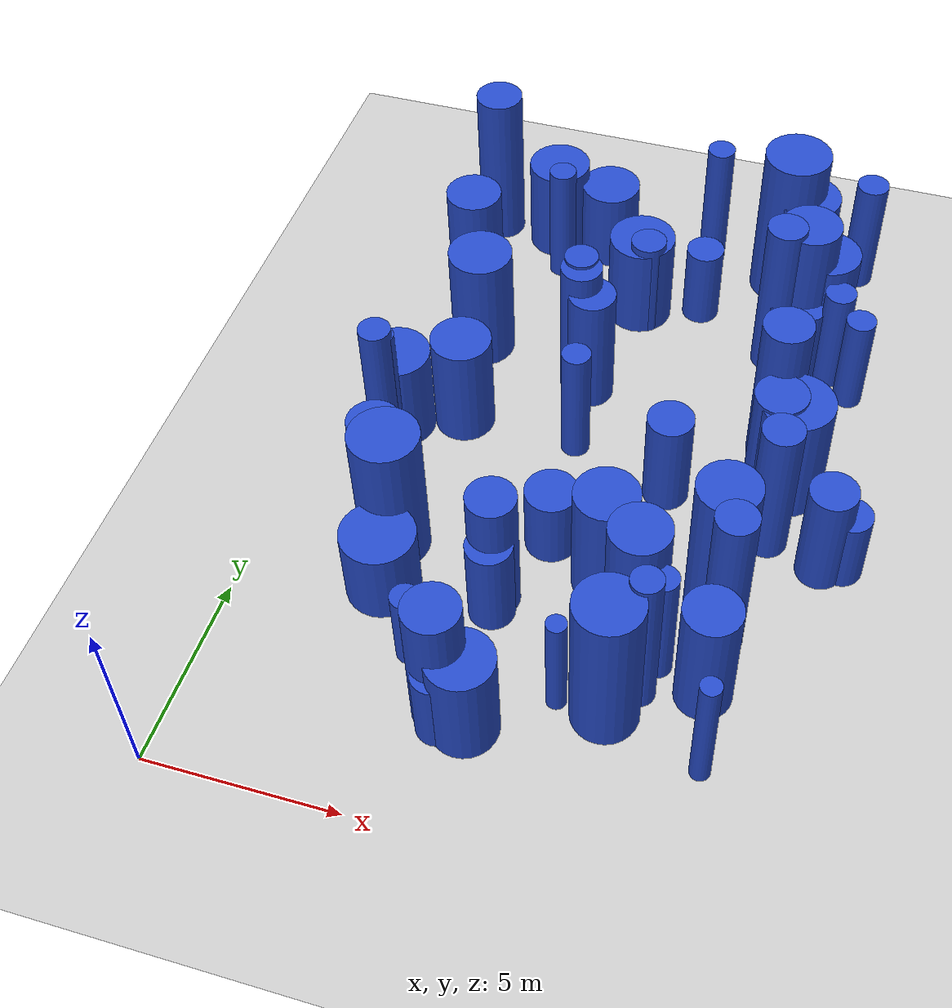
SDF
<sdf version="1.6">
 <world name="default">
  <model name="ground_plane">
   <static>1</static>
   <link name="link">
    <collision name="collision">
     <geometry><plane><normal>0 0 1</normal><size>100 100</size></plane></geometry>
     <surface><friction><ode><mu>100</mu><mu2>50</mu2></ode></friction></surface>
    </collision>
    <visual name="visual">
     <cast_shadows>0</cast_shadows>
     <geometry><plane><normal>0 0 1</normal><size>100 100</size></plane></geometry>
     <material>
      <script><uri>file://media/materials/scripts/gazebo.material</uri><name>Gazebo/Grey</name></script>
     </material>
    </visual>
   </link>
  </model>
  <model name="11">
   <static>0</static>
   <link name="link">
    <inertial>
     <mass>2</mass>
     <inertia><ixx>3.77059</ixx><ixy>0</ixy><ixz>0</ixz><iyy>3.77059</iyy><iyz>0</iyz><izz>0.647013</izz></inertia>
    </inertial>
    <collision name="collision">
     <geometry><cylinder><length>4.5478</length><radius>0.804371</radius></cylinder></geometry>
     <surface><contact><collide_without_contact>1</collide_without_contact></contact></surface>
    </collision>
    <visual name="visual">
     <geometry><cylinder><length>4.5478</length><radius>0.804371</radius></cylinder></geometry>
     <material>
      <script><uri>file://media/materials/scripts/gazebo.material</uri><name>Gazebo/Blue</name></script>
     </material>
    </visual>
    <gravity>0</gravity>
   </link>
   <pose>11.7835 8.00404 2.2739 0 -0 0</pose>
  </model>
  <model name="19">
   <static>0</static>
   <link name="link">
    <inertial>
     <mass>2</mass>
     <inertia>
      <ixx>0.997922</ixx>
      <ixy>0</ixy>
      <ixz>0</ixz>
      <iyy>0.997922</iyy>
      <iyz>0</iyz>
      <izz>0.310025</izz>
     </inertia>
    </inertial>
    <collision name="collision">
     <geometry><cylinder><length>2.24888</length><radius>0.556799</radius></cylinder></geometry>
     <surface><contact><collide_without_contact>1</collide_without_contact></contact></surface>
    </collision>
    <visual name="visual">
     <geometry><cylinder><length>2.24888</length><radius>0.556799</radius></cylinder></geometry>
     <material>
      <script><uri>file://media/materials/scripts/gazebo.material</uri><name>Gazebo/Blue</name></script>
     </material>
    </visual>
    <gravity>0</gravity>
   </link>
   <pose>6.32254 2.75765 1.12444 0 -0 0</pose>
  </model>
  <model name="21">
   <static>0</static>
   <link name="link">
    <inertial>
     <mass>2</mass>
     <inertia>
      <ixx>1.75689</ixx>
      <ixy>0</ixy>
      <ixz>0</ixz>
      <iyy>1.75689</iyy>
      <iyz>0</iyz>
      <izz>0.0651823</izz>
     </inertia>
    </inertial>
    <collision name="collision">
     <geometry><cylinder><length>3.21648</length><radius>0.255308</radius></cylinder></geometry>
     <surface><contact><collide_without_contact>1</collide_without_contact></contact></surface>
    </collision>
    <visual name="visual">
     <geometry><cylinder><length>3.21648</length><radius>0.255308</radius></cylinder></geometry>
     <material>
      <script><uri>file://media/materials/scripts/gazebo.material</uri><name>Gazebo/Blue</name></script>
     </material>
    </visual>
    <gravity>0</gravity>
   </link>
   <pose>8.77724 4.1816 1.60824 0 -0 0</pose>
  </model>
  <model name="22">
   <static>0</static>
   <link name="link">
    <inertial>
     <mass>2</mass>
     <inertia><ixx>2.50621</ixx><ixy>0</ixy><ixz>0</ixz><iyy>2.50621</iyy><iyz>0</iyz><izz>0.412755</izz></inertia>
    </inertial>
    <collision name="collision">
     <geometry><cylinder><length>3.7147</length><radius>0.64246</radius></cylinder></geometry>
     <surface><contact><collide_without_contact>1</collide_without_contact></contact></surface>
    </collision>
    <visual name="visual">
     <geometry><cylinder><length>3.7147</length><radius>0.64246</radius></cylinder></geometry>
     <material>
      <script><uri>file://media/materials/scripts/gazebo.material</uri><name>Gazebo/Blue</name></script>
     </material>
    </visual>
    <gravity>0</gravity>
   </link>
   <pose>6.86482 14.0884 1.85735 0 -0 0</pose>
  </model>
  <model name="32">
   <static>0</static>
   <link name="link">
    <inertial>
     <mass>2</mass>
     <inertia><ixx>2.55489</ixx><ixy>0</ixy><ixz>0</ixz><iyy>2.55489</iyy><iyz>0</iyz><izz>0.788576</izz></inertia>
    </inertial>
    <collision name="collision">
     <geometry><cylinder><length>3.6005</length><radius>0.888018</radius></cylinder></geometry>
     <surface><contact><collide_without_contact>1</collide_without_contact></contact></surface>
    </collision>
    <visual name="visual">
     <geometry><cylinder><length>3.6005</length><radius>0.888018</radius></cylinder></geometry>
     <material>
      <script><uri>file://media/materials/scripts/gazebo.material</uri><name>Gazebo/Blue</name></script>
     </material>
    </visual>
    <gravity>0</gravity>
   </link>
   <pose>12.5968 17.555 1.80025 0 -0 0</pose>
  </model>
  <model name="40">
   <static>0</static>
   <link name="link">
    <inertial>
     <mass>2</mass>
     <inertia><ixx>1.69462</ixx><ixy>0</ixy><ixz>0</ixz><iyy>1.69462</iyy><iyz>0</iyz><izz>0.809361</izz></inertia>
    </inertial>
    <collision name="collision">
     <geometry><cylinder><length>2.78202</length><radius>0.899645</radius></cylinder></geometry>
     <surface><contact><collide_without_contact>1</collide_without_contact></contact></surface>
    </collision>
    <visual name="visual">
     <geometry><cylinder><length>2.78202</length><radius>0.899645</radius></cylinder></geometry>
     <material>
      <script><uri>file://media/materials/scripts/gazebo.material</uri><name>Gazebo/Blue</name></script>
     </material>
    </visual>
    <gravity>0</gravity>
   </link>
   <pose>2.25113 11.4808 1.39101 0 -0 0</pose>
  </model>
  <model name="45">
   <static>0</static>
   <link name="link">
    <inertial>
     <mass>2</mass>
     <inertia><ixx>3.37145</ixx><ixy>0</ixy><ixz>0</ixz><iyy>3.37145</iyy><iyz>0</iyz><izz>0.593405</izz></inertia>
    </inertial>
    <collision name="collision">
     <geometry><cylinder><length>4.29517</length><radius>0.770328</radius></cylinder></geometry>
     <surface><contact><collide_without_contact>1</collide_without_contact></contact></surface>
    </collision>
    <visual name="visual">
     <geometry><cylinder><length>4.29517</length><radius>0.770328</radius></cylinder></geometry>
     <material>
      <script><uri>file://media/materials/scripts/gazebo.material</uri><name>Gazebo/Blue</name></script>
     </material>
    </visual>
    <gravity>0</gravity>
   </link>
   <pose>10.0825 6.46261 2.14758 0 -0 0</pose>
  </model>
  <model name="47">
   <static>0</static>
   <link name="link">
    <inertial>
     <mass>2</mass>
     <inertia><ixx>4.30581</ixx><ixy>0</ixy><ixz>0</ixz><iyy>4.30581</iyy><iyz>0</iyz><izz>0.874701</izz></inertia>
    </inertial>
    <collision name="collision">
     <geometry><cylinder><length>4.81775</length><radius>0.935255</radius></cylinder></geometry>
     <surface><contact><collide_without_contact>1</collide_without_contact></contact></surface>
    </collision>
    <visual name="visual">
     <geometry><cylinder><length>4.81775</length><radius>0.935255</radius></cylinder></geometry>
     <material>
      <script><uri>file://media/materials/scripts/gazebo.material</uri><name>Gazebo/Blue</name></script>
     </material>
    </visual>
    <gravity>0</gravity>
   </link>
   <pose>11.1965 19.9775 2.40888 0 -0 0</pose>
  </model>
  <model name="52">
   <static>0</static>
   <link name="link">
    <inertial>
     <mass>2</mass>
     <inertia><ixx>2.41043</ixx><ixy>0</ixy><ixz>0</ixz><iyy>2.41043</iyy><iyz>0</iyz><izz>0.952559</izz></inertia>
    </inertial>
    <collision name="collision">
     <geometry><cylinder><length>3.40659</length><radius>0.975991</radius></cylinder></geometry>
     <surface><contact><collide_without_contact>1</collide_without_contact></contact></surface>
    </collision>
    <visual name="visual">
     <geometry><cylinder><length>3.40659</length><radius>0.975991</radius></cylinder></geometry>
     <material>
      <script><uri>file://media/materials/scripts/gazebo.material</uri><name>Gazebo/Blue</name></script>
     </material>
    </visual>
    <gravity>0</gravity>
   </link>
   <pose>12.7603 12.0977 1.7033 0 -0 0</pose>
  </model>
  <model name="58">
   <static>0</static>
   <link name="link">
    <inertial>
     <mass>2</mass>
     <inertia><ixx>2.373</ixx><ixy>0</ixy><ixz>0</ixz><iyy>2.373</iyy><iyz>0</iyz><izz>0.145123</izz></inertia>
    </inertial>
    <collision name="collision">
     <geometry><cylinder><length>3.71519</length><radius>0.38095</radius></cylinder></geometry>
     <surface><contact><collide_without_contact>1</collide_without_contact></contact></surface>
    </collision>
    <visual name="visual">
     <geometry><cylinder><length>3.71519</length><radius>0.38095</radius></cylinder></geometry>
     <material>
      <script><uri>file://media/materials/scripts/gazebo.material</uri><name>Gazebo/Blue</name></script>
     </material>
    </visual>
    <gravity>0</gravity>
   </link>
   <pose>4.71278 18.757 1.8576 0 -0 0</pose>
  </model>
  <model name="60">
   <static>0</static>
   <link name="link">
    <inertial>
     <mass>2</mass>
     <inertia><ixx>1.97195</ixx><ixy>0</ixy><ixz>0</ixz><iyy>1.97195</iyy><iyz>0</iyz><izz>0.666713</izz></inertia>
    </inertial>
    <collision name="collision">
     <geometry><cylinder><length>3.13553</length><radius>0.816525</radius></cylinder></geometry>
     <surface><contact><collide_without_contact>1</collide_without_contact></contact></surface>
    </collision>
    <visual name="visual">
     <geometry><cylinder><length>3.13553</length><radius>0.816525</radius></cylinder></geometry>
     <material>
      <script><uri>file://media/materials/scripts/gazebo.material</uri><name>Gazebo/Blue</name></script>
     </material>
    </visual>
    <gravity>0</gravity>
   </link>
   <pose>3.85237 12.0827 1.56776 0 -0 0</pose>
  </model>
  <model name="71">
   <static>0</static>
   <link name="link">
    <inertial>
     <mass>2</mass>
     <inertia><ixx>1.35655</ixx><ixy>0</ixy><ixz>0</ixz><iyy>1.35655</iyy><iyz>0</iyz><izz>0.3536</izz></inertia>
    </inertial>
    <collision name="collision">
     <geometry><cylinder><length>2.66054</length><radius>0.594643</radius></cylinder></geometry>
     <surface><contact><collide_without_contact>1</collide_without_contact></contact></surface>
    </collision>
    <visual name="visual">
     <geometry><cylinder><length>2.66054</length><radius>0.594643</radius></cylinder></geometry>
     <material>
      <script><uri>file://media/materials/scripts/gazebo.material</uri><name>Gazebo/Blue</name></script>
     </material>
    </visual>
    <gravity>0</gravity>
   </link>
   <pose>6.51923 6.20878 1.33027 0 -0 0</pose>
  </model>
  <model name="77">
   <static>0</static>
   <link name="link">
    <inertial>
     <mass>2</mass>
     <inertia><ixx>2.29026</ixx><ixy>0</ixy><ixz>0</ixz><iyy>2.29026</iyy><iyz>0</iyz><izz>0.492455</izz></inertia>
    </inertial>
    <collision name="collision">
     <geometry><cylinder><length>3.50202</length><radius>0.701751</radius></cylinder></geometry>
     <surface><contact><collide_without_contact>1</collide_without_contact></contact></surface>
    </collision>
    <visual name="visual">
     <geometry><cylinder><length>3.50202</length><radius>0.701751</radius></cylinder></geometry>
     <material>
      <script><uri>file://media/materials/scripts/gazebo.material</uri><name>Gazebo/Blue</name></script>
     </material>
    </visual>
    <gravity>0</gravity>
   </link>
   <pose>12.3354 12.1472 1.75101 0 -0 0</pose>
  </model>
  <model name="88">
   <static>0</static>
   <link name="link">
    <inertial>
     <mass>2</mass>
     <inertia><ixx>3.32332</ixx><ixy>0</ixy><ixz>0</ixz><iyy>3.32332</iyy><iyz>0</iyz><izz>0.81294</izz></inertia>
    </inertial>
    <collision name="collision">
     <geometry><cylinder><length>4.18343</length><radius>0.901632</radius></cylinder></geometry>
     <surface><contact><collide_without_contact>1</collide_without_contact></contact></surface>
    </collision>
    <visual name="visual">
     <geometry><cylinder><length>4.18343</length><radius>0.901632</radius></cylinder></geometry>
     <material>
      <script><uri>file://media/materials/scripts/gazebo.material</uri><name>Gazebo/Blue</name></script>
     </material>
    </visual>
    <gravity>0</gravity>
   </link>
   <pose>3.4913 7.55284 2.09172 0 -0 0</pose>
  </model>
  <model name="90">
   <static>0</static>
   <link name="link">
    <inertial>
     <mass>2</mass>
     <inertia><ixx>2.86278</ixx><ixy>0</ixy><ixz>0</ixz><iyy>2.86278</iyy><iyz>0</iyz><izz>0.397125</izz></inertia>
    </inertial>
    <collision name="collision">
     <geometry><cylinder><length>3.99816</length><radius>0.630179</radius></cylinder></geometry>
     <surface><contact><collide_without_contact>1</collide_without_contact></contact></surface>
    </collision>
    <visual name="visual">
     <geometry><cylinder><length>3.99816</length><radius>0.630179</radius></cylinder></geometry>
     <material>
      <script><uri>file://media/materials/scripts/gazebo.material</uri><name>Gazebo/Blue</name></script>
     </material>
    </visual>
    <gravity>0</gravity>
   </link>
   <pose>6.48747 6.60006 1.99908 0 -0 0</pose>
  </model>
  <model name="92">
   <static>0</static>
   <link name="link">
    <inertial>
     <mass>2</mass>
     <inertia><ixx>1.26504</ixx><ixy>0</ixy><ixz>0</ixz><iyy>1.26504</iyy><iyz>0</iyz><izz>0.921977</izz></inertia>
    </inertial>
    <collision name="collision">
     <geometry><cylinder><length>2.19643</length><radius>0.960197</radius></cylinder></geometry>
     <surface><contact><collide_without_contact>1</collide_without_contact></contact></surface>
    </collision>
    <visual name="visual">
     <geometry><cylinder><length>2.19643</length><radius>0.960197</radius></cylinder></geometry>
     <material>
      <script><uri>file://media/materials/scripts/gazebo.material</uri><name>Gazebo/Blue</name></script>
     </material>
    </visual>
    <gravity>0</gravity>
   </link>
   <pose>3.6952 6.14217 1.09822 0 -0 0</pose>
  </model>
  <model name="95">
   <static>0</static>
   <link name="link">
    <inertial>
     <mass>2</mass>
     <inertia><ixx>2.20856</ixx><ixy>0</ixy><ixz>0</ixz><iyy>2.20856</iyy><iyz>0</iyz><izz>0.202569</izz></inertia>
    </inertial>
    <collision name="collision">
     <geometry><cylinder><length>3.55579</length><radius>0.450077</radius></cylinder></geometry>
     <surface><contact><collide_without_contact>1</collide_without_contact></contact></surface>
    </collision>
    <visual name="visual">
     <geometry><cylinder><length>3.55579</length><radius>0.450077</radius></cylinder></geometry>
     <material>
      <script><uri>file://media/materials/scripts/gazebo.material</uri><name>Gazebo/Blue</name></script>
     </material>
    </visual>
    <gravity>0</gravity>
   </link>
   <pose>13.3348 20.8304 1.77789 0 -0 0</pose>
  </model>
  <model name="97">
   <static>0</static>
   <link name="link">
    <inertial>
     <mass>2</mass>
     <inertia><ixx>1.79072</ixx><ixy>0</ixy><ixz>0</ixz><iyy>1.79072</iyy><iyz>0</iyz><izz>0.492461</izz></inertia>
    </inertial>
    <collision name="collision">
     <geometry><cylinder><length>3.04417</length><radius>0.701755</radius></cylinder></geometry>
     <surface><contact><collide_without_contact>1</collide_without_contact></contact></surface>
    </collision>
    <visual name="visual">
     <geometry><cylinder><length>3.04417</length><radius>0.701755</radius></cylinder></geometry>
     <material>
      <script><uri>file://media/materials/scripts/gazebo.material</uri><name>Gazebo/Blue</name></script>
     </material>
    </visual>
    <gravity>0</gravity>
   </link>
   <pose>2.64905 8.82661 1.52208 0 -0 0</pose>
  </model>
  <model name="100">
   <static>0</static>
   <link name="link">
    <inertial>
     <mass>2</mass>
     <inertia><ixx>3.68584</ixx><ixy>0</ixy><ixz>0</ixz><iyy>3.68584</iyy><iyz>0</iyz><izz>0.715323</izz></inertia>
    </inertial>
    <collision name="collision">
     <geometry><cylinder><length>4.46868</length><radius>0.845768</radius></cylinder></geometry>
     <surface><contact><collide_without_contact>1</collide_without_contact></contact></surface>
    </collision>
    <visual name="visual">
     <geometry><cylinder><length>4.46868</length><radius>0.845768</radius></cylinder></geometry>
     <material>
      <script><uri>file://media/materials/scripts/gazebo.material</uri><name>Gazebo/Blue</name></script>
     </material>
    </visual>
    <gravity>0</gravity>
   </link>
   <pose>9.95991 4.16997 2.23434 0 -0 0</pose>
  </model>
  <model name="107">
   <static>0</static>
   <link name="link">
    <inertial>
     <mass>2</mass>
     <inertia><ixx>1.85939</ixx><ixy>0</ixy><ixz>0</ixz><iyy>1.85939</iyy><iyz>0</iyz><izz>0.178695</izz></inertia>
    </inertial>
    <collision name="collision">
     <geometry><cylinder><length>3.25887</length><radius>0.422723</radius></cylinder></geometry>
     <surface><contact><collide_without_contact>1</collide_without_contact></contact></surface>
    </collision>
    <visual name="visual">
     <geometry><cylinder><length>3.25887</length><radius>0.422723</radius></cylinder></geometry>
     <material>
      <script><uri>file://media/materials/scripts/gazebo.material</uri><name>Gazebo/Blue</name></script>
     </material>
    </visual>
    <gravity>0</gravity>
   </link>
   <pose>13.1558 16.4623 1.62944 0 -0 0</pose>
  </model>
  <model name="111">
   <static>0</static>
   <link name="link">
    <inertial>
     <mass>2</mass>
     <inertia>
      <ixx>0.780098</ixx>
      <ixy>0</ixy>
      <ixz>0</ixz>
      <iyy>0.780098</iyy>
      <iyz>0</iyz>
      <izz>0.171352</izz>
     </inertia>
    </inertial>
    <collision name="collision">
     <geometry><cylinder><length>2.04121</length><radius>0.413947</radius></cylinder></geometry>
     <surface><contact><collide_without_contact>1</collide_without_contact></contact></surface>
    </collision>
    <visual name="visual">
     <geometry><cylinder><length>2.04121</length><radius>0.413947</radius></cylinder></geometry>
     <material>
      <script><uri>file://media/materials/scripts/gazebo.material</uri><name>Gazebo/Blue</name></script>
     </material>
    </visual>
    <gravity>0</gravity>
   </link>
   <pose>5.84415 20.2492 1.0206 0 -0 0</pose>
  </model>
  <model name="118">
   <static>0</static>
   <link name="link">
    <inertial>
     <mass>2</mass>
     <inertia><ixx>1.11708</ixx><ixy>0</ixy><ixz>0</ixz><iyy>1.11708</iyy><iyz>0</iyz><izz>0.275413</izz></inertia>
    </inertial>
    <collision name="collision">
     <geometry><cylinder><length>2.42409</length><radius>0.524798</radius></cylinder></geometry>
     <surface><contact><collide_without_contact>1</collide_without_contact></contact></surface>
    </collision>
    <visual name="visual">
     <geometry><cylinder><length>2.42409</length><radius>0.524798</radius></cylinder></geometry>
     <material>
      <script><uri>file://media/materials/scripts/gazebo.material</uri><name>Gazebo/Blue</name></script>
     </material>
    </visual>
    <gravity>0</gravity>
   </link>
   <pose>9.1346 18.0868 1.21205 0 -0 0</pose>
  </model>
  <model name="121">
   <static>0</static>
   <link name="link">
    <inertial>
     <mass>2</mass>
     <inertia><ixx>2.77038</ixx><ixy>0</ixy><ixz>0</ixz><iyy>2.77038</iyy><iyz>0</iyz><izz>0.151986</izz></inertia>
    </inertial>
    <collision name="collision">
     <geometry><cylinder><length>4.02074</length><radius>0.389854</radius></cylinder></geometry>
     <surface><contact><collide_without_contact>1</collide_without_contact></contact></surface>
    </collision>
    <visual name="visual">
     <geometry><cylinder><length>4.02074</length><radius>0.389854</radius></cylinder></geometry>
     <material>
      <script><uri>file://media/materials/scripts/gazebo.material</uri><name>Gazebo/Blue</name></script>
     </material>
    </visual>
    <gravity>0</gravity>
   </link>
   <pose>8.93188 20.6188 2.01037 0 -0 0</pose>
  </model>
  <model name="134">
   <static>0</static>
   <link name="link">
    <inertial>
     <mass>2</mass>
     <inertia><ixx>1.3834</ixx><ixy>0</ixy><ixz>0</ixz><iyy>1.3834</iyy><iyz>0</iyz><izz>0.719026</izz></inertia>
    </inertial>
    <collision name="collision">
     <geometry><cylinder><length>2.47858</length><radius>0.847954</radius></cylinder></geometry>
     <surface><contact><collide_without_contact>1</collide_without_contact></contact></surface>
    </collision>
    <visual name="visual">
     <geometry><cylinder><length>2.47858</length><radius>0.847954</radius></cylinder></geometry>
     <material>
      <script><uri>file://media/materials/scripts/gazebo.material</uri><name>Gazebo/Blue</name></script>
     </material>
    </visual>
    <gravity>0</gravity>
   </link>
   <pose>5.83667 20.0283 1.23929 0 -0 0</pose>
  </model>
  <model name="143">
   <static>0</static>
   <link name="link">
    <inertial>
     <mass>2</mass>
     <inertia><ixx>3.31479</ixx><ixy>0</ixy><ixz>0</ixz><iyy>3.31479</iyy><iyz>0</iyz><izz>0.28799</izz></inertia>
    </inertial>
    <collision name="collision">
     <geometry><cylinder><length>4.36174</length><radius>0.536647</radius></cylinder></geometry>
     <surface><contact><collide_without_contact>1</collide_without_contact></contact></surface>
    </collision>
    <visual name="visual">
     <geometry><cylinder><length>4.36174</length><radius>0.536647</radius></cylinder></geometry>
     <material>
      <script><uri>file://media/materials/scripts/gazebo.material</uri><name>Gazebo/Blue</name></script>
     </material>
    </visual>
    <gravity>0</gravity>
   </link>
   <pose>12.638 10.2211 2.18087 0 -0 0</pose>
  </model>
  <model name="151">
   <static>0</static>
   <link name="link">
    <inertial>
     <mass>2</mass>
     <inertia>
      <ixx>0.940168</ixx>
      <ixy>0</ixy>
      <ixz>0</ixz>
      <iyy>0.940168</iyy>
      <iyz>0</iyz>
      <izz>0.483154</izz>
     </inertia>
    </inertial>
    <collision name="collision">
     <geometry><cylinder><length>2.04733</length><radius>0.695093</radius></cylinder></geometry>
     <surface><contact><collide_without_contact>1</collide_without_contact></contact></surface>
    </collision>
    <visual name="visual">
     <geometry><cylinder><length>2.04733</length><radius>0.695093</radius></cylinder></geometry>
     <material>
      <script><uri>file://media/materials/scripts/gazebo.material</uri><name>Gazebo/Blue</name></script>
     </material>
    </visual>
    <gravity>0</gravity>
   </link>
   <pose>7.32886 8.69612 1.02366 0 -0 0</pose>
  </model>
  <model name="154">
   <static>0</static>
   <link name="link">
    <inertial>
     <mass>2</mass>
     <inertia><ixx>4.18222</ixx><ixy>0</ixy><ixz>0</ixz><iyy>4.18222</iyy><iyz>0</iyz><izz>0.43784</izz></inertia>
    </inertial>
    <collision name="collision">
     <geometry><cylinder><length>4.87646</length><radius>0.661695</radius></cylinder></geometry>
     <surface><contact><collide_without_contact>1</collide_without_contact></contact></surface>
    </collision>
    <visual name="visual">
     <geometry><cylinder><length>4.87646</length><radius>0.661695</radius></cylinder></geometry>
     <material>
      <script><uri>file://media/materials/scripts/gazebo.material</uri><name>Gazebo/Blue</name></script>
     </material>
    </visual>
    <gravity>0</gravity>
   </link>
   <pose>2.38609 20.1587 2.43823 0 -0 0</pose>
  </model>
  <model name="161">
   <static>0</static>
   <link name="link">
    <inertial>
     <mass>2</mass>
     <inertia>
      <ixx>0.964244</ixx>
      <ixy>0</ixy>
      <ixz>0</ixz>
      <iyy>0.964244</iyy>
      <iyz>0</iyz>
      <izz>0.135231</izz>
     </inertia>
    </inertial>
    <collision name="collision">
     <geometry><cylinder><length>2.31943</length><radius>0.367737</radius></cylinder></geometry>
     <surface><contact><collide_without_contact>1</collide_without_contact></contact></surface>
    </collision>
    <visual name="visual">
     <geometry><cylinder><length>2.31943</length><radius>0.367737</radius></cylinder></geometry>
     <material>
      <script><uri>file://media/materials/scripts/gazebo.material</uri><name>Gazebo/Blue</name></script>
     </material>
    </visual>
    <gravity>0</gravity>
   </link>
   <pose>5.00364 4.50297 1.15972 0 -0 0</pose>
  </model>
  <model name="178">
   <static>0</static>
   <link name="link">
    <inertial>
     <mass>2</mass>
     <inertia><ixx>2.19598</ixx><ixy>0</ixy><ixz>0</ixz><iyy>2.19598</iyy><iyz>0</iyz><izz>0.145822</izz></inertia>
    </inertial>
    <collision name="collision">
     <geometry><cylinder><length>3.56909</length><radius>0.381867</radius></cylinder></geometry>
     <surface><contact><collide_without_contact>1</collide_without_contact></contact></surface>
    </collision>
    <visual name="visual">
     <geometry><cylinder><length>3.56909</length><radius>0.381867</radius></cylinder></geometry>
     <material>
      <script><uri>file://media/materials/scripts/gazebo.material</uri><name>Gazebo/Blue</name></script>
     </material>
    </visual>
    <gravity>0</gravity>
   </link>
   <pose>10.8212 5.80215 1.78454 0 -0 0</pose>
  </model>
  <model name="190">
   <static>0</static>
   <link name="link">
    <inertial>
     <mass>2</mass>
     <inertia><ixx>3.97541</ixx><ixy>0</ixy><ixz>0</ixz><iyy>3.97541</iyy><iyz>0</iyz><izz>0.441903</izz></inertia>
    </inertial>
    <collision name="collision">
     <geometry><cylinder><length>4.74624</length><radius>0.664758</radius></cylinder></geometry>
     <surface><contact><collide_without_contact>1</collide_without_contact></contact></surface>
    </collision>
    <visual name="visual">
     <geometry><cylinder><length>4.74624</length><radius>0.664758</radius></cylinder></geometry>
     <material>
      <script><uri>file://media/materials/scripts/gazebo.material</uri><name>Gazebo/Blue</name></script>
     </material>
    </visual>
    <gravity>0</gravity>
   </link>
   <pose>12.1448 13.34 2.37312 0 -0 0</pose>
  </model>
  <model name="196">
   <static>0</static>
   <link name="link">
    <inertial>
     <mass>2</mass>
     <inertia><ixx>2.2744</ixx><ixy>0</ixy><ixz>0</ixz><iyy>2.2744</iyy><iyz>0</iyz><izz>0.512084</izz></inertia>
    </inertial>
    <collision name="collision">
     <geometry><cylinder><length>3.47996</length><radius>0.7156</radius></cylinder></geometry>
     <surface><contact><collide_without_contact>1</collide_without_contact></contact></surface>
    </collision>
    <visual name="visual">
     <geometry><cylinder><length>3.47996</length><radius>0.7156</radius></cylinder></geometry>
     <material>
      <script><uri>file://media/materials/scripts/gazebo.material</uri><name>Gazebo/Blue</name></script>
     </material>
    </visual>
    <gravity>0</gravity>
   </link>
   <pose>12.0664 5.3226 1.73998 0 -0 0</pose>
  </model>
  <model name="209">
   <static>0</static>
   <link name="link">
    <inertial>
     <mass>2</mass>
     <inertia><ixx>1.70016</ixx><ixy>0</ixy><ixz>0</ixz><iyy>1.70016</iyy><iyz>0</iyz><izz>0.245876</izz></inertia>
    </inertial>
    <collision name="collision">
     <geometry><cylinder><length>3.07625</length><radius>0.495859</radius></cylinder></geometry>
     <surface><contact><collide_without_contact>1</collide_without_contact></contact></surface>
    </collision>
    <visual name="visual">
     <geometry><cylinder><length>3.07625</length><radius>0.495859</radius></cylinder></geometry>
     <material>
      <script><uri>file://media/materials/scripts/gazebo.material</uri><name>Gazebo/Blue</name></script>
     </material>
    </visual>
    <gravity>0</gravity>
   </link>
   <pose>7.65148 17.2583 1.53812 0 -0 0</pose>
  </model>
  <model name="217">
   <static>0</static>
   <link name="link">
    <inertial>
     <mass>2</mass>
     <inertia><ixx>4.24569</ixx><ixy>0</ixy><ixz>0</ixz><iyy>4.24569</iyy><iyz>0</iyz><izz>0.172333</izz></inertia>
    </inertial>
    <collision name="collision">
     <geometry><cylinder><length>4.99571</length><radius>0.41513</radius></cylinder></geometry>
     <surface><contact><collide_without_contact>1</collide_without_contact></contact></surface>
    </collision>
    <visual name="visual">
     <geometry><cylinder><length>4.99571</length><radius>0.41513</radius></cylinder></geometry>
     <material>
      <script><uri>file://media/materials/scripts/gazebo.material</uri><name>Gazebo/Blue</name></script>
     </material>
    </visual>
    <gravity>0</gravity>
   </link>
   <pose>2.37642 10.0684 2.49786 0 -0 0</pose>
  </model>
  <model name="220">
   <static>0</static>
   <link name="link">
    <inertial>
     <mass>2</mass>
     <inertia><ixx>3.2534</ixx><ixy>0</ixy><ixz>0</ixz><iyy>3.2534</iyy><iyz>0</iyz><izz>0.316523</izz></inertia>
    </inertial>
    <collision name="collision">
     <geometry><cylinder><length>4.30939</length><radius>0.562604</radius></cylinder></geometry>
     <surface><contact><collide_without_contact>1</collide_without_contact></contact></surface>
    </collision>
    <visual name="visual">
     <geometry><cylinder><length>4.30939</length><radius>0.562604</radius></cylinder></geometry>
     <material>
      <script><uri>file://media/materials/scripts/gazebo.material</uri><name>Gazebo/Blue</name></script>
     </material>
    </visual>
    <gravity>0</gravity>
   </link>
   <pose>6.48702 14.384 2.15469 0 -0 0</pose>
  </model>
  <model name="241">
   <static>0</static>
   <link name="link">
    <inertial>
     <mass>2</mass>
     <inertia>
      <ixx>2.23357</ixx>
      <ixy>0</ixy>
      <ixz>0</ixz>
      <iyy>2.23357</iyy>
      <iyz>0</iyz>
      <izz>0.0663426</izz>
     </inertia>
    </inertial>
    <collision name="collision">
     <geometry><cylinder><length>3.63351</length><radius>0.257571</radius></cylinder></geometry>
     <surface><contact><collide_without_contact>1</collide_without_contact></contact></surface>
    </collision>
    <visual name="visual">
     <geometry><cylinder><length>3.63351</length><radius>0.257571</radius></cylinder></geometry>
     <material>
      <script><uri>file://media/materials/scripts/gazebo.material</uri><name>Gazebo/Blue</name></script>
     </material>
    </visual>
    <gravity>0</gravity>
   </link>
   <pose>12.4477 3.31184 1.81675 0 -0 0</pose>
  </model>
  <model name="246">
   <static>0</static>
   <link name="link">
    <inertial>
     <mass>2</mass>
     <inertia><ixx>4.11689</ixx><ixy>0</ixy><ixz>0</ixz><iyy>4.11689</iyy><iyz>0</iyz><izz>0.667544</izz></inertia>
    </inertial>
    <collision name="collision">
     <geometry><cylinder><length>4.76432</length><radius>0.817033</radius></cylinder></geometry>
     <surface><contact><collide_without_contact>1</collide_without_contact></contact></surface>
    </collision>
    <visual name="visual">
     <geometry><cylinder><length>4.76432</length><radius>0.817033</radius></cylinder></geometry>
     <material>
      <script><uri>file://media/materials/scripts/gazebo.material</uri><name>Gazebo/Blue</name></script>
     </material>
    </visual>
    <gravity>0</gravity>
   </link>
   <pose>12.0593 17.2094 2.38216 0 -0 0</pose>
  </model>
  <model name="253">
   <static>0</static>
   <link name="link">
    <inertial>
     <mass>2</mass>
     <inertia><ixx>1.58853</ixx><ixy>0</ixy><ixz>0</ixz><iyy>1.58853</iyy><iyz>0</iyz><izz>0.16235</izz></inertia>
    </inertial>
    <collision name="collision">
     <geometry><cylinder><length>3.00735</length><radius>0.402927</radius></cylinder></geometry>
     <surface><contact><collide_without_contact>1</collide_without_contact></contact></surface>
    </collision>
    <visual name="visual">
     <geometry><cylinder><length>3.00735</length><radius>0.402927</radius></cylinder></geometry>
     <material>
      <script><uri>file://media/materials/scripts/gazebo.material</uri><name>Gazebo/Blue</name></script>
     </material>
    </visual>
    <gravity>0</gravity>
   </link>
   <pose>13.8323 15.8253 1.50367 0 -0 0</pose>
  </model>
  <model name="285">
   <static>0</static>
   <link name="link">
    <inertial>
     <mass>2</mass>
     <inertia><ixx>2.55608</ixx><ixy>0</ixy><ixz>0</ixz><iyy>2.55608</iyy><iyz>0</iyz><izz>0.868945</izz></inertia>
    </inertial>
    <collision name="collision">
     <geometry><cylinder><length>3.56786</length><radius>0.932172</radius></cylinder></geometry>
     <surface><contact><collide_without_contact>1</collide_without_contact></contact></surface>
    </collision>
    <visual name="visual">
     <geometry><cylinder><length>3.56786</length><radius>0.932172</radius></cylinder></geometry>
     <material>
      <script><uri>file://media/materials/scripts/gazebo.material</uri><name>Gazebo/Blue</name></script>
     </material>
    </visual>
    <gravity>0</gravity>
   </link>
   <pose>11.6471 19.7929 1.78393 0 -0 0</pose>
  </model>
  <model name="292">
   <static>0</static>
   <link name="link">
    <inertial>
     <mass>2</mass>
     <inertia><ixx>2.46115</ixx><ixy>0</ixy><ixz>0</ixz><iyy>2.46115</iyy><iyz>0</iyz><izz>0.77766</izz></inertia>
    </inertial>
    <collision name="collision">
     <geometry><cylinder><length>3.52617</length><radius>0.88185</radius></cylinder></geometry>
     <surface><contact><collide_without_contact>1</collide_without_contact></contact></surface>
    </collision>
    <visual name="visual">
     <geometry><cylinder><length>3.52617</length><radius>0.88185</radius></cylinder></geometry>
     <material>
      <script><uri>file://media/materials/scripts/gazebo.material</uri><name>Gazebo/Blue</name></script>
     </material>
    </visual>
    <gravity>0</gravity>
   </link>
   <pose>3.44188 15.0061 1.76309 0 -0 0</pose>
  </model>
  <model name="306">
   <static>0</static>
   <link name="link">
    <inertial>
     <mass>2</mass>
     <inertia><ixx>1.77968</ixx><ixy>0</ixy><ixz>0</ixz><iyy>1.77968</iyy><iyz>0</iyz><izz>0.858944</izz></inertia>
    </inertial>
    <collision name="collision">
     <geometry><cylinder><length>2.84627</length><radius>0.926792</radius></cylinder></geometry>
     <surface><contact><collide_without_contact>1</collide_without_contact></contact></surface>
    </collision>
    <visual name="visual">
     <geometry><cylinder><length>2.84627</length><radius>0.926792</radius></cylinder></geometry>
     <material>
      <script><uri>file://media/materials/scripts/gazebo.material</uri><name>Gazebo/Blue</name></script>
     </material>
    </visual>
    <gravity>0</gravity>
   </link>
   <pose>7.39099 17.6124 1.42313 0 -0 0</pose>
  </model>
  <model name="315">
   <static>0</static>
   <link name="link">
    <inertial>
     <mass>2</mass>
     <inertia><ixx>3.32584</ixx><ixy>0</ixy><ixz>0</ixz><iyy>3.32584</iyy><iyz>0</iyz><izz>0.207599</izz></inertia>
    </inertial>
    <collision name="collision">
     <geometry><cylinder><length>4.39684</length><radius>0.45563</radius></cylinder></geometry>
     <surface><contact><collide_without_contact>1</collide_without_contact></contact></surface>
    </collision>
    <visual name="visual">
     <geometry><cylinder><length>4.39684</length><radius>0.45563</radius></cylinder></geometry>
     <material>
      <script><uri>file://media/materials/scripts/gazebo.material</uri><name>Gazebo/Blue</name></script>
     </material>
    </visual>
    <gravity>0</gravity>
   </link>
   <pose>6.39158 14.7044 2.19842 0 -0 0</pose>
  </model>
  <model name="326">
   <static>0</static>
   <link name="link">
    <inertial>
     <mass>2</mass>
     <inertia><ixx>2.22945</ixx><ixy>0</ixy><ixz>0</ixz><iyy>2.22945</iyy><iyz>0</iyz><izz>0.149359</izz></inertia>
    </inertial>
    <collision name="collision">
     <geometry><cylinder><length>3.59564</length><radius>0.386469</radius></cylinder></geometry>
     <surface><contact><collide_without_contact>1</collide_without_contact></contact></surface>
    </collision>
    <visual name="visual">
     <geometry><cylinder><length>3.59564</length><radius>0.386469</radius></cylinder></geometry>
     <material>
      <script><uri>file://media/materials/scripts/gazebo.material</uri><name>Gazebo/Blue</name></script>
     </material>
    </visual>
    <gravity>0</gravity>
   </link>
   <pose>7.03084 11.9715 1.79782 0 -0 0</pose>
  </model>
  <model name="335">
   <static>0</static>
   <link name="link">
    <inertial>
     <mass>2</mass>
     <inertia><ixx>2.34824</ixx><ixy>0</ixy><ixz>0</ixz><iyy>2.34824</iyy><iyz>0</iyz><izz>0.697116</izz></inertia>
    </inertial>
    <collision name="collision">
     <geometry><cylinder><length>3.46383</length><radius>0.834934</radius></cylinder></geometry>
     <surface><contact><collide_without_contact>1</collide_without_contact></contact></surface>
    </collision>
    <visual name="visual">
     <geometry><cylinder><length>3.46383</length><radius>0.834934</radius></cylinder></geometry>
     <material>
      <script><uri>file://media/materials/scripts/gazebo.material</uri><name>Gazebo/Blue</name></script>
     </material>
    </visual>
    <gravity>0</gravity>
   </link>
   <pose>8.94495 7.87453 1.73191 0 -0 0</pose>
  </model>
  <model name="341">
   <static>0</static>
   <link name="link">
    <inertial>
     <mass>2</mass>
     <inertia><ixx>4.20672</ixx><ixy>0</ixy><ixz>0</ixz><iyy>4.20672</iyy><iyz>0</iyz><izz>0.294398</izz></inertia>
    </inertial>
    <collision name="collision">
     <geometry><cylinder><length>4.93529</length><radius>0.542584</radius></cylinder></geometry>
     <surface><contact><collide_without_contact>1</collide_without_contact></contact></surface>
    </collision>
    <visual name="visual">
     <geometry><cylinder><length>4.93529</length><radius>0.542584</radius></cylinder></geometry>
     <material>
      <script><uri>file://media/materials/scripts/gazebo.material</uri><name>Gazebo/Blue</name></script>
     </material>
    </visual>
    <gravity>0</gravity>
   </link>
   <pose>11.4715 16.7522 2.46765 0 -0 0</pose>
  </model>
  <model name="381">
   <static>0</static>
   <link name="link">
    <inertial>
     <mass>2</mass>
     <inertia><ixx>4.04782</ixx><ixy>0</ixy><ixz>0</ixz><iyy>4.04782</iyy><iyz>0</iyz><izz>0.2773</izz></inertia>
    </inertial>
    <collision name="collision">
     <geometry><cylinder><length>4.84304</length><radius>0.526593</radius></cylinder></geometry>
     <surface><contact><collide_without_contact>1</collide_without_contact></contact></surface>
    </collision>
    <visual name="visual">
     <geometry><cylinder><length>4.84304</length><radius>0.526593</radius></cylinder></geometry>
     <material>
      <script><uri>file://media/materials/scripts/gazebo.material</uri><name>Gazebo/Blue</name></script>
     </material>
    </visual>
    <gravity>0</gravity>
   </link>
   <pose>12.1553 6.94754 2.42152 0 -0 0</pose>
  </model>
  <model name="398">
   <static>0</static>
   <link name="link">
    <inertial>
     <mass>2</mass>
     <inertia><ixx>1.4225</ixx><ixy>0</ixy><ixz>0</ixz><iyy>1.4225</iyy><iyz>0</iyz><izz>0.832351</izz></inertia>
    </inertial>
    <collision name="collision">
     <geometry><cylinder><length>2.45722</length><radius>0.912333</radius></cylinder></geometry>
     <surface><contact><collide_without_contact>1</collide_without_contact></contact></surface>
    </collision>
    <visual name="visual">
     <geometry><cylinder><length>2.45722</length><radius>0.912333</radius></cylinder></geometry>
     <material>
      <script><uri>file://media/materials/scripts/gazebo.material</uri><name>Gazebo/Blue</name></script>
     </material>
    </visual>
    <gravity>0</gravity>
   </link>
   <pose>12.0644 16.7865 1.22861 0 -0 0</pose>
  </model>
  <model name="399">
   <static>0</static>
   <link name="link">
    <inertial>
     <mass>2</mass>
     <inertia><ixx>3.77558</ixx><ixy>0</ixy><ixz>0</ixz><iyy>3.77558</iyy><iyz>0</iyz><izz>0.112101</izz></inertia>
    </inertial>
    <collision name="collision">
     <geometry><cylinder><length>4.72411</length><radius>0.334815</radius></cylinder></geometry>
     <surface><contact><collide_without_contact>1</collide_without_contact></contact></surface>
    </collision>
    <visual name="visual">
     <geometry><cylinder><length>4.72411</length><radius>0.334815</radius></cylinder></geometry>
     <material>
      <script><uri>file://media/materials/scripts/gazebo.material</uri><name>Gazebo/Blue</name></script>
     </material>
    </visual>
    <gravity>0</gravity>
   </link>
   <pose>2.48039 10.1785 2.36205 0 -0 0</pose>
  </model>
  <model name="403">
   <static>0</static>
   <link name="link">
    <inertial>
     <mass>2</mass>
     <inertia><ixx>3.57233</ixx><ixy>0</ixy><ixz>0</ixz><iyy>3.57233</iyy><iyz>0</iyz><izz>0.156886</izz></inertia>
    </inertial>
    <collision name="collision">
     <geometry><cylinder><length>4.57857</length><radius>0.396088</radius></cylinder></geometry>
     <surface><contact><collide_without_contact>1</collide_without_contact></contact></surface>
    </collision>
    <visual name="visual">
     <geometry><cylinder><length>4.57857</length><radius>0.396088</radius></cylinder></geometry>
     <material>
      <script><uri>file://media/materials/scripts/gazebo.material</uri><name>Gazebo/Blue</name></script>
     </material>
    </visual>
    <gravity>0</gravity>
   </link>
   <pose>10.6063 4.94267 2.28929 0 -0 0</pose>
  </model>
  <model name="408">
   <static>0</static>
   <link name="link">
    <inertial>
     <mass>2</mass>
     <inertia><ixx>3.20472</ixx><ixy>0</ixy><ixz>0</ixz><iyy>3.20472</iyy><iyz>0</iyz><izz>0.493428</izz></inertia>
    </inertial>
    <collision name="collision">
     <geometry><cylinder><length>4.21284</length><radius>0.702444</radius></cylinder></geometry>
     <surface><contact><collide_without_contact>1</collide_without_contact></contact></surface>
    </collision>
    <visual name="visual">
     <geometry><cylinder><length>4.21284</length><radius>0.702444</radius></cylinder></geometry>
     <material>
      <script><uri>file://media/materials/scripts/gazebo.material</uri><name>Gazebo/Blue</name></script>
     </material>
    </visual>
    <gravity>0</gravity>
   </link>
   <pose>6.24756 3.15922 2.10642 0 -0 0</pose>
  </model>
  <model name="427">
   <static>0</static>
   <link name="link">
    <inertial>
     <mass>2</mass>
     <inertia><ixx>2.42359</ixx><ixy>0</ixy><ixz>0</ixz><iyy>2.42359</iyy><iyz>0</iyz><izz>0.608297</izz></inertia>
    </inertial>
    <collision name="collision">
     <geometry><cylinder><length>3.56604</length><radius>0.779934</radius></cylinder></geometry>
     <surface><contact><collide_without_contact>1</collide_without_contact></contact></surface>
    </collision>
    <visual name="visual">
     <geometry><cylinder><length>3.56604</length><radius>0.779934</radius></cylinder></geometry>
     <material>
      <script><uri>file://media/materials/scripts/gazebo.material</uri><name>Gazebo/Blue</name></script>
     </material>
    </visual>
    <gravity>0</gravity>
   </link>
   <pose>2.49548 17.3208 1.78302 0 -0 0</pose>
  </model>
  <model name="459">
   <static>0</static>
   <link name="link">
    <inertial>
     <mass>2</mass>
     <inertia>
      <ixx>0.964309</ixx>
      <ixy>0</ixy>
      <ixz>0</ixz>
      <iyy>0.964309</iyy>
      <iyz>0</iyz>
      <izz>0.298942</izz>
     </inertia>
    </inertial>
    <collision name="collision">
     <geometry><cylinder><length>2.21111</length><radius>0.546756</radius></cylinder></geometry>
     <surface><contact><collide_without_contact>1</collide_without_contact></contact></surface>
    </collision>
    <visual name="visual">
     <geometry><cylinder><length>2.21111</length><radius>0.546756</radius></cylinder></geometry>
     <material>
      <script><uri>file://media/materials/scripts/gazebo.material</uri><name>Gazebo/Blue</name></script>
     </material>
    </visual>
    <gravity>0</gravity>
   </link>
   <pose>14.6167 9.88268 1.10556 0 -0 0</pose>
  </model>
  <model name="460">
   <static>0</static>
   <link name="link">
    <inertial>
     <mass>2</mass>
     <inertia><ixx>1.61995</ixx><ixy>0</ixy><ixz>0</ixz><iyy>1.61995</iyy><iyz>0</iyz><izz>0.375082</izz></inertia>
    </inertial>
    <collision name="collision">
     <geometry><cylinder><length>2.93164</length><radius>0.612439</radius></cylinder></geometry>
     <surface><contact><collide_without_contact>1</collide_without_contact></contact></surface>
    </collision>
    <visual name="visual">
     <geometry><cylinder><length>2.93164</length><radius>0.612439</radius></cylinder></geometry>
     <material>
      <script><uri>file://media/materials/scripts/gazebo.material</uri><name>Gazebo/Blue</name></script>
     </material>
    </visual>
    <gravity>0</gravity>
   </link>
   <pose>9.76082 11.083 1.46582 0 -0 0</pose>
  </model>
  <model name="469">
   <static>0</static>
   <link name="link">
    <inertial>
     <mass>2</mass>
     <inertia><ixx>1.75307</ixx><ixy>0</ixy><ixz>0</ixz><iyy>1.75307</iyy><iyz>0</iyz><izz>0.714379</izz></inertia>
    </inertial>
    <collision name="collision">
     <geometry><cylinder><length>2.89401</length><radius>0.845209</radius></cylinder></geometry>
     <surface><contact><collide_without_contact>1</collide_without_contact></contact></surface>
    </collision>
    <visual name="visual">
     <geometry><cylinder><length>2.89401</length><radius>0.845209</radius></cylinder></geometry>
     <material>
      <script><uri>file://media/materials/scripts/gazebo.material</uri><name>Gazebo/Blue</name></script>
     </material>
    </visual>
    <gravity>0</gravity>
   </link>
   <pose>6.91981 2.90788 1.44701 0 -0 0</pose>
  </model>
  <model name="478">
   <static>0</static>
   <link name="link">
    <inertial>
     <mass>2</mass>
     <inertia><ixx>1.85034</ixx><ixy>0</ixy><ixz>0</ixz><iyy>1.85034</iyy><iyz>0</iyz><izz>0.383848</izz></inertia>
    </inertial>
    <collision name="collision">
     <geometry><cylinder><length>3.15444</length><radius>0.619555</radius></cylinder></geometry>
     <surface><contact><collide_without_contact>1</collide_without_contact></contact></surface>
    </collision>
    <visual name="visual">
     <geometry><cylinder><length>3.15444</length><radius>0.619555</radius></cylinder></geometry>
     <material>
      <script><uri>file://media/materials/scripts/gazebo.material</uri><name>Gazebo/Blue</name></script>
     </material>
    </visual>
    <gravity>0</gravity>
   </link>
   <pose>14.0942 9.71243 1.57722 0 -0 0</pose>
  </model>
  <model name="480">
   <static>0</static>
   <link name="link">
    <inertial>
     <mass>2</mass>
     <inertia><ixx>1.78683</ixx><ixy>0</ixy><ixz>0</ixz><iyy>1.78683</iyy><iyz>0</iyz><izz>0.783054</izz></inertia>
    </inertial>
    <collision name="collision">
     <geometry><cylinder><length>2.89341</length><radius>0.884903</radius></cylinder></geometry>
     <surface><contact><collide_without_contact>1</collide_without_contact></contact></surface>
    </collision>
    <visual name="visual">
     <geometry><cylinder><length>2.89341</length><radius>0.884903</radius></cylinder></geometry>
     <material>
      <script><uri>file://media/materials/scripts/gazebo.material</uri><name>Gazebo/Blue</name></script>
     </material>
    </visual>
    <gravity>0</gravity>
   </link>
   <pose>4.24997 20.0557 1.4467 0 -0 0</pose>
  </model>
 </world>
</sdf>
